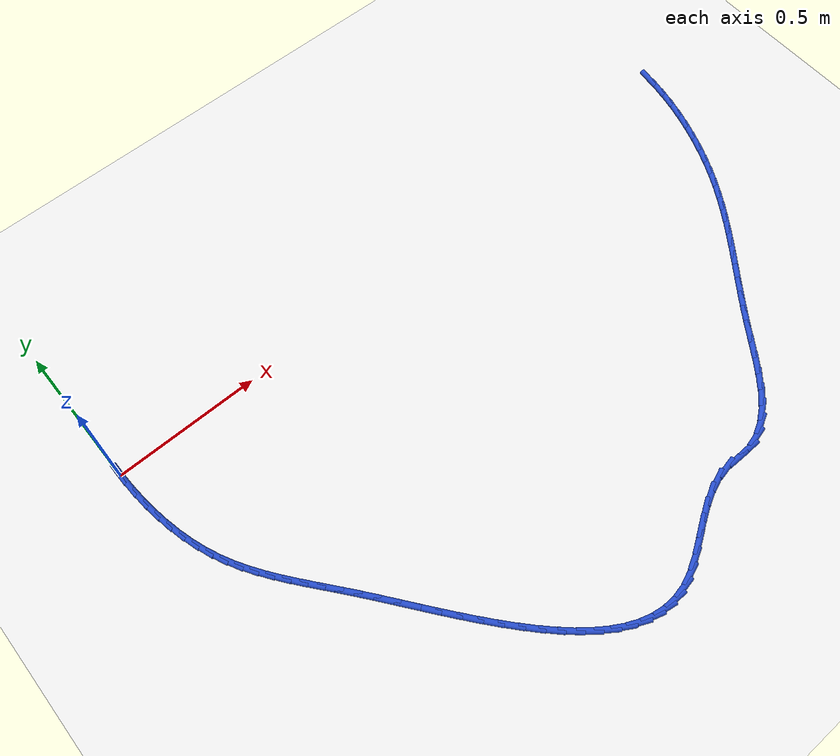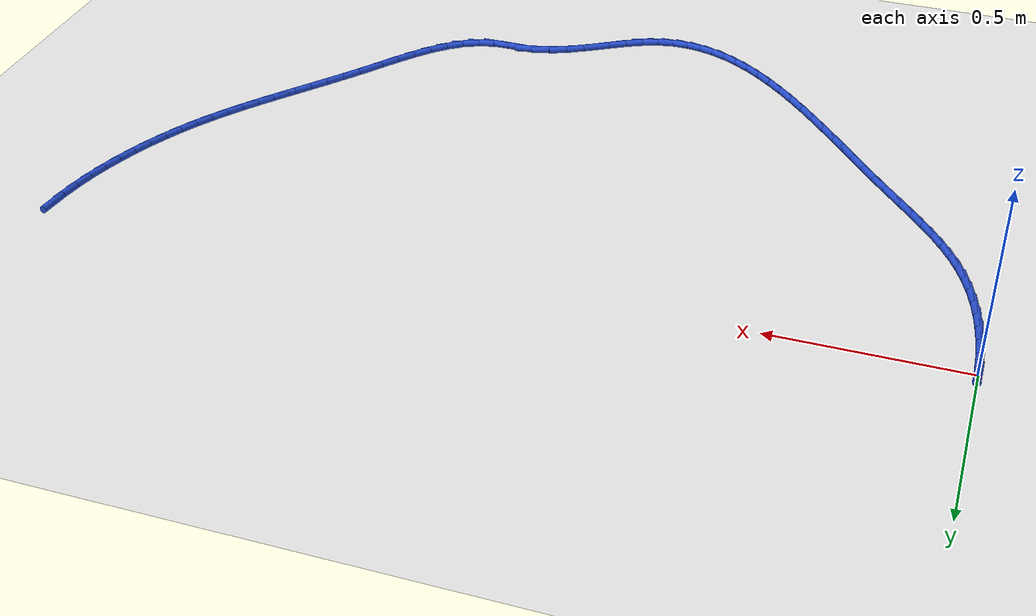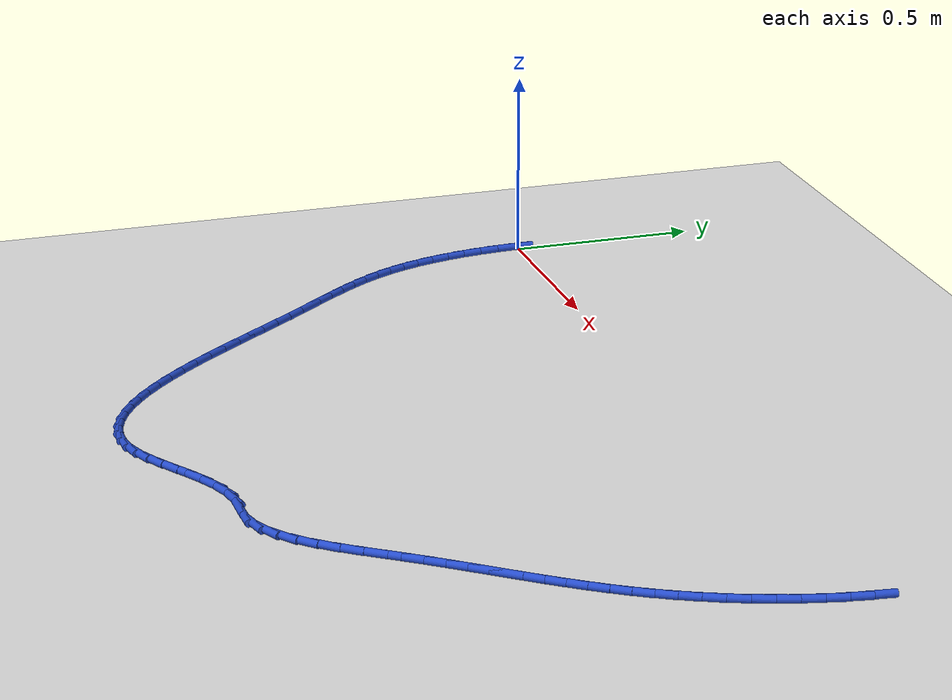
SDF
<sdf version="1.6">
 <world name="default">
  <model name="ground_plane">
   <static>1</static>
   <link name="link">
    <collision name="collision">
     <geometry><plane><normal>0 0 1</normal><size>100 100</size></plane></geometry>
     <surface><friction><ode><mu>100</mu><mu2>50</mu2></ode></friction></surface>
    </collision>
    <visual name="visual">
     <cast_shadows>0</cast_shadows>
     <geometry><plane><normal>0 0 1</normal><size>100 100</size></plane></geometry>
     <material>
      <script><uri>file://media/materials/scripts/gazebo.material</uri><name>Gazebo/WhiteGlow</name></script>
     </material>
    </visual>
   </link>
  </model>
  <model name="line">
   <link name="link_0">
    <pose>1.734723475976807e-18 4.163336342344337e-17 0.01 0 1.57 1.5695473844659875</pose>
    <collision name="collision">
     <geometry><cylinder><radius>0.01</radius><length>0.08</length></cylinder></geometry>
    </collision>
    <visual name="visual">
     <material>
      <script><name>Gazebo/Blue</name><uri>file://media/materials/scripts/gazebo.material</uri></script>
     </material>
     <geometry><cylinder><radius>0.01</radius><length>0.08</length></cylinder></geometry>
    </visual>
   </link>
   <link name="link_76">
    <pose>2.3649017792913236 0.04489803889261144 0.01 0 1.57 1.4408421237259572</pose>
    <collision name="collision">
     <geometry><cylinder><radius>0.01</radius><length>0.08</length></cylinder></geometry>
    </collision>
    <visual name="visual">
     <material>
      <script><name>Gazebo/Blue</name><uri>file://media/materials/scripts/gazebo.material</uri></script>
     </material>
     <geometry><cylinder><radius>0.01</radius><length>0.08</length></cylinder></geometry>
    </visual>
   </link>
   <link name="link_77">
    <pose>2.3579750446269636 -0.00810292153986026 0.01 0 1.57 1.3892770488132746</pose>
    <collision name="collision">
     <geometry><cylinder><radius>0.01</radius><length>0.08</length></cylinder></geometry>
    </collision>
    <visual name="visual">
     <material>
      <script><name>Gazebo/Blue</name><uri>file://media/materials/scripts/gazebo.material</uri></script>
     </material>
     <geometry><cylinder><radius>0.01</radius><length>0.08</length></cylinder></geometry>
    </visual>
   </link>
   <link name="link_78">
    <pose>2.3482644758122775 -0.06101014951831565 0.01 0 1.57 1.3408073047150721</pose>
    <collision name="collision">
     <geometry><cylinder><radius>0.01</radius><length>0.08</length></cylinder></geometry>
    </collision>
    <visual name="visual">
     <material>
      <script><name>Gazebo/Blue</name><uri>file://media/materials/scripts/gazebo.material</uri></script>
     </material>
     <geometry><cylinder><radius>0.01</radius><length>0.08</length></cylinder></geometry>
    </visual>
   </link>
   <link name="link_79">
    <pose>2.335953263272254 -0.11359255589817692 0.01 0 1.57 1.2949159385856528</pose>
    <collision name="collision">
     <geometry><cylinder><radius>0.01</radius><length>0.08</length></cylinder></geometry>
    </collision>
    <visual name="visual">
     <material>
      <script><name>Gazebo/Blue</name><uri>file://media/materials/scripts/gazebo.material</uri></script>
     </material>
     <geometry><cylinder><radius>0.01</radius><length>0.08</length></cylinder></geometry>
    </visual>
   </link>
   <link name="link_80">
    <pose>2.32122459743188 -0.16561905153486278 0.01 0 1.57 1.2511005310031922</pose>
    <collision name="collision">
     <geometry><cylinder><radius>0.01</radius><length>0.08</length></cylinder></geometry>
    </collision>
    <visual name="visual">
     <material>
      <script><name>Gazebo/Blue</name><uri>file://media/materials/scripts/gazebo.material</uri></script>
     </material>
     <geometry><cylinder><radius>0.01</radius><length>0.08</length></cylinder></geometry>
    </visual>
   </link>
   <link name="link_81">
    <pose>2.304261668716143 -0.21685854728379544 0.01 0 1.57 1.2088701583974053</pose>
    <collision name="collision">
     <geometry><cylinder><radius>0.01</radius><length>0.08</length></cylinder></geometry>
    </collision>
    <visual name="visual">
     <material>
      <script><name>Gazebo/Blue</name><uri>file://media/materials/scripts/gazebo.material</uri></script>
     </material>
     <geometry><cylinder><radius>0.01</radius><length>0.08</length></cylinder></geometry>
    </visual>
   </link>
   <link name="link_82">
    <pose>2.2852476675500313 -0.2670799540003944 0.01 0 1.57 1.1677383058425364</pose>
    <collision name="collision">
     <geometry><cylinder><radius>0.01</radius><length>0.08</length></cylinder></geometry>
    </collision>
    <visual name="visual">
     <material>
      <script><name>Gazebo/Blue</name><uri>file://media/materials/scripts/gazebo.material</uri></script>
     </material>
     <geometry><cylinder><radius>0.01</radius><length>0.08</length></cylinder></geometry>
    </visual>
   </link>
   <link name="link_83">
    <pose>2.2643657843585325 -0.3160521825400793 0.01 0 1.57 1.1272123939795518</pose>
    <collision name="collision">
     <geometry><cylinder><radius>0.01</radius><length>0.08</length></cylinder></geometry>
    </collision>
    <visual name="visual">
     <material>
      <script><name>Gazebo/Blue</name><uri>file://media/materials/scripts/gazebo.material</uri></script>
     </material>
     <geometry><cylinder><radius>0.01</radius><length>0.08</length></cylinder></geometry>
    </visual>
   </link>
   <link name="link_84">
    <pose>2.2417992095666346 -0.36354414375827226 0.01 0 1.57 1.0867799917671845</pose>
    <collision name="collision">
     <geometry><cylinder><radius>0.01</radius><length>0.08</length></cylinder></geometry>
    </collision>
    <visual name="visual">
     <material>
      <script><name>Gazebo/Blue</name><uri>file://media/materials/scripts/gazebo.material</uri></script>
     </material>
     <geometry><cylinder><radius>0.01</radius><length>0.08</length></cylinder></geometry>
    </visual>
   </link>
   <link name="link_85">
    <pose>2.217731133568367 -0.40932474873902086 0.01 0 1.57 1.0466288748015282</pose>
    <collision name="collision">
     <geometry><cylinder><radius>0.01</radius><length>0.08</length></cylinder></geometry>
    </collision>
    <visual name="visual">
     <material>
      <script><name>Gazebo/Blue</name><uri>file://media/materials/scripts/gazebo.material</uri></script>
     </material>
     <geometry><cylinder><radius>0.01</radius><length>0.08</length></cylinder></geometry>
    </visual>
   </link>
   <link name="link_86">
    <pose>2.1923315444752087 -0.45326040779905746 0.01 0 1.57 1.0095762652193239</pose>
    <collision name="collision">
     <geometry><cylinder><radius>0.01</radius><length>0.08</length></cylinder></geometry>
    </collision>
    <visual name="visual">
     <material>
      <script><name>Gazebo/Blue</name><uri>file://media/materials/scripts/gazebo.material</uri></script>
     </material>
     <geometry><cylinder><radius>0.01</radius><length>0.08</length></cylinder></geometry>
    </visual>
   </link>
   <link name="link_87">
    <pose>2.1657197114305498 -0.49559209227912004 0.01 0 1.57 0.9770061520092153</pose>
    <collision name="collision">
     <geometry><cylinder><radius>0.01</radius><length>0.08</length></cylinder></geometry>
    </collision>
    <visual name="visual">
     <material>
      <script><name>Gazebo/Blue</name><uri>file://media/materials/scripts/gazebo.material</uri></script>
     </material>
     <geometry><cylinder><radius>0.01</radius><length>0.08</length></cylinder></geometry>
    </visual>
   </link>
   <link name="link_88">
    <pose>2.138002725852883 -0.5366507063651704 0.01 0 1.57 0.9495499112246137</pose>
    <collision name="collision">
     <geometry><cylinder><radius>0.01</radius><length>0.08</length></cylinder></geometry>
    </collision>
    <visual name="visual">
     <material>
      <script><name>Gazebo/Blue</name><uri>file://media/materials/scripts/gazebo.material</uri></script>
     </material>
     <geometry><cylinder><radius>0.01</radius><length>0.08</length></cylinder></geometry>
    </visual>
   </link>
   <link name="link_89">
    <pose>2.109287679160701 -0.5767671542431724 0.01 0 1.57 0.9276658729128038</pose>
    <collision name="collision">
     <geometry><cylinder><radius>0.01</radius><length>0.08</length></cylinder></geometry>
    </collision>
    <visual name="visual">
     <material>
      <script><name>Gazebo/Blue</name><uri>file://media/materials/scripts/gazebo.material</uri></script>
     </material>
     <geometry><cylinder><radius>0.01</radius><length>0.08</length></cylinder></geometry>
    </visual>
   </link>
   <link name="link_90">
    <pose>2.0796816627724986 -0.6162723400990876 0.01 0 1.57 0.9116351513699099</pose>
    <collision name="collision">
     <geometry><cylinder><radius>0.01</radius><length>0.08</length></cylinder></geometry>
    </collision>
    <visual name="visual">
     <material>
      <script><name>Gazebo/Blue</name><uri>file://media/materials/scripts/gazebo.material</uri></script>
     </material>
     <geometry><cylinder><radius>0.01</radius><length>0.08</length></cylinder></geometry>
    </visual>
   </link>
   <link name="link_91">
    <pose>2.0492917681067695 -0.6554971681188778 0.01 0 1.57 0.9015695190994819</pose>
    <collision name="collision">
     <geometry><cylinder><radius>0.01</radius><length>0.08</length></cylinder></geometry>
    </collision>
    <visual name="visual">
     <material>
      <script><name>Gazebo/Blue</name><uri>file://media/materials/scripts/gazebo.material</uri></script>
     </material>
     <geometry><cylinder><radius>0.01</radius><length>0.08</length></cylinder></geometry>
    </visual>
   </link>
   <link name="link_92">
    <pose>2.0182250865820053 -0.6947725424885067 0.01 0 1.57 0.8974266095816686</pose>
    <collision name="collision">
     <geometry><cylinder><radius>0.01</radius><length>0.08</length></cylinder></geometry>
    </collision>
    <visual name="visual">
     <material>
      <script><name>Gazebo/Blue</name><uri>file://media/materials/scripts/gazebo.material</uri></script>
     </material>
     <geometry><cylinder><radius>0.01</radius><length>0.08</length></cylinder></geometry>
    </visual>
   </link>
   <link name="link_93">
    <pose>1.9865887096167005 -0.7344293673939353 0.01 0 1.57 0.8990283898471098</pose>
    <collision name="collision">
     <geometry><cylinder><radius>0.01</radius><length>0.08</length></cylinder></geometry>
    </collision>
    <visual name="visual">
     <material>
      <script><name>Gazebo/Blue</name><uri>file://media/materials/scripts/gazebo.material</uri></script>
     </material>
     <geometry><cylinder><radius>0.01</radius><length>0.08</length></cylinder></geometry>
    </visual>
   </link>
   <link name="link_94">
    <pose>1.954489728629349 -0.7747985470211276 0.01 0 1.57 0.9060802342906797</pose>
    <collision name="collision">
     <geometry><cylinder><radius>0.01</radius><length>0.08</length></cylinder></geometry>
    </collision>
    <visual name="visual">
     <material>
      <script><name>Gazebo/Blue</name><uri>file://media/materials/scripts/gazebo.material</uri></script>
     </material>
     <geometry><cylinder><radius>0.01</radius><length>0.08</length></cylinder></geometry>
    </visual>
   </link>
   <link name="link_95">
    <pose>1.922035235038443 -0.8162109855560449 0.01 0 1.57 0.9181894072336634</pose>
    <collision name="collision">
     <geometry><cylinder><radius>0.01</radius><length>0.08</length></cylinder></geometry>
    </collision>
    <visual name="visual">
     <material>
      <script><name>Gazebo/Blue</name><uri>file://media/materials/scripts/gazebo.material</uri></script>
     </material>
     <geometry><cylinder><radius>0.01</radius><length>0.08</length></cylinder></geometry>
    </visual>
   </link>
   <link name="link_96">
    <pose>1.8893323202624774 -0.8589975871846491 0.01 0 1.57 0.9347436394525728</pose>
    <collision name="collision">
     <geometry><cylinder><radius>0.01</radius><length>0.08</length></cylinder></geometry>
    </collision>
    <visual name="visual">
     <material>
      <script><name>Gazebo/Blue</name><uri>file://media/materials/scripts/gazebo.material</uri></script>
     </material>
     <geometry><cylinder><radius>0.01</radius><length>0.08</length></cylinder></geometry>
    </visual>
   </link>
   <link name="link_97">
    <pose>1.8564854625218865 -0.9034798307692181 0.01 0 1.57 0.9454439014108309</pose>
    <collision name="collision">
     <geometry><cylinder><radius>0.01</radius><length>0.08</length></cylinder></geometry>
    </collision>
    <visual name="visual">
     <material>
      <script><name>Gazebo/Blue</name><uri>file://media/materials/scripts/gazebo.material</uri></script>
     </material>
     <geometry><cylinder><radius>0.01</radius><length>0.08</length></cylinder></geometry>
    </visual>
   </link>
   <link name="link_98">
    <pose>1.8234084817130296 -0.949291525742367 0.01 0 1.57 0.9345434135452154</pose>
    <collision name="collision">
     <geometry><cylinder><radius>0.01</radius><length>0.08</length></cylinder></geometry>
    </collision>
    <visual name="visual">
     <material>
      <script><name>Gazebo/Blue</name><uri>file://media/materials/scripts/gazebo.material</uri></script>
     </material>
     <geometry><cylinder><radius>0.01</radius><length>0.08</length></cylinder></geometry>
    </visual>
   </link>
   <link name="link_99">
    <pose>1.7896983598570202 -0.9949237057255055 0.01 0 1.57 0.9001369142952705</pose>
    <collision name="collision">
     <geometry><cylinder><radius>0.01</radius><length>0.08</length></cylinder></geometry>
    </collision>
    <visual name="visual">
     <material>
      <script><name>Gazebo/Blue</name><uri>file://media/materials/scripts/gazebo.material</uri></script>
     </material>
     <geometry><cylinder><radius>0.01</radius><length>0.08</length></cylinder></geometry>
    </visual>
   </link>
   <link name="link_100">
    <pose>1.754922170715385 -1.0387595307608861 0.01 0 1.57 0.8394207207594148</pose>
    <collision name="collision">
     <geometry><cylinder><radius>0.01</radius><length>0.08</length></cylinder></geometry>
    </collision>
    <visual name="visual">
     <material>
      <script><name>Gazebo/Blue</name><uri>file://media/materials/scripts/gazebo.material</uri></script>
     </material>
     <geometry><cylinder><radius>0.01</radius><length>0.08</length></cylinder></geometry>
    </visual>
   </link>
   <link name="link_101">
    <pose>1.7186469880496509 -1.079182160890761 0.01 0 1.57 0.7471760440602291</pose>
    <collision name="collision">
     <geometry><cylinder><radius>0.01</radius><length>0.08</length></cylinder></geometry>
    </collision>
    <visual name="visual">
     <material>
      <script><name>Gazebo/Blue</name><uri>file://media/materials/scripts/gazebo.material</uri></script>
     </material>
     <geometry><cylinder><radius>0.01</radius><length>0.08</length></cylinder></geometry>
    </visual>
   </link>
   <link name="link_102">
    <pose>1.6804398856213425 -1.1145747561573844 0.01 0 1.57 0.6164160340300721</pose>
    <collision name="collision">
     <geometry><cylinder><radius>0.01</radius><length>0.08</length></cylinder></geometry>
    </collision>
    <visual name="visual">
     <material>
      <script><name>Gazebo/Blue</name><uri>file://media/materials/scripts/gazebo.material</uri></script>
     </material>
     <geometry><cylinder><radius>0.01</radius><length>0.08</length></cylinder></geometry>
    </visual>
   </link>
   <link name="link_103">
    <pose>1.6398679371919866 -1.1433204766030094 0.01 0 1.57 0.4412145432560478</pose>
    <collision name="collision">
     <geometry><cylinder><radius>0.01</radius><length>0.08</length></cylinder></geometry>
    </collision>
    <visual name="visual">
     <material>
      <script><name>Gazebo/Blue</name><uri>file://media/materials/scripts/gazebo.material</uri></script>
     </material>
     <geometry><cylinder><radius>0.01</radius><length>0.08</length></cylinder></geometry>
    </visual>
   </link>
   <link name="link_104">
    <pose>1.5964982165231096 -1.1638024822698878 0.01 0 1.57 0.223689753819876</pose>
    <collision name="collision">
     <geometry><cylinder><radius>0.01</radius><length>0.08</length></cylinder></geometry>
    </collision>
    <visual name="visual">
     <material>
      <script><name>Gazebo/Blue</name><uri>file://media/materials/scripts/gazebo.material</uri></script>
     </material>
     <geometry><cylinder><radius>0.01</radius><length>0.08</length></cylinder></geometry>
    </visual>
   </link>
   <link name="link_105">
    <pose>1.549897797376236 -1.1744039332002736 0.01 0 1.57 0.004072688614267255</pose>
    <collision name="collision">
     <geometry><cylinder><radius>0.01</radius><length>0.08</length></cylinder></geometry>
    </collision>
    <visual name="visual">
     <material>
      <script><name>Gazebo/Blue</name><uri>file://media/materials/scripts/gazebo.material</uri></script>
     </material>
     <geometry><cylinder><radius>0.01</radius><length>0.08</length></cylinder></geometry>
    </visual>
   </link>
   <link name="link_106">
    <pose>1.4998926563912276 -1.174607589694622 0.01 0 1.57 -0.009997981243390384</pose>
    <collision name="collision">
     <geometry><cylinder><radius>0.01</radius><length>0.08</length></cylinder></geometry>
    </collision>
    <visual name="visual">
     <material>
      <script><name>Gazebo/Blue</name><uri>file://media/materials/scripts/gazebo.material</uri></script>
     </material>
     <geometry><cylinder><radius>0.01</radius><length>0.08</length></cylinder></geometry>
    </visual>
   </link>
   <link name="link_107">
    <pose>1.4487108863418365 -1.1740958582667231 0.01 0 1.57 0.17848686323441992</pose>
    <collision name="collision">
     <geometry><cylinder><radius>0.01</radius><length>0.08</length></cylinder></geometry>
    </collision>
    <visual name="visual">
     <material>
      <script><name>Gazebo/Blue</name><uri>file://media/materials/scripts/gazebo.material</uri></script>
     </material>
     <geometry><cylinder><radius>0.01</radius><length>0.08</length></cylinder></geometry>
    </visual>
   </link>
   <link name="link_108">
    <pose>1.3988385212987402 -1.1830931679148318 0.01 0 1.57 0.3469346015298998</pose>
    <collision name="collision">
     <geometry><cylinder><radius>0.01</radius><length>0.08</length></cylinder></geometry>
    </collision>
    <visual name="visual">
     <material>
      <script><name>Gazebo/Blue</name><uri>file://media/materials/scripts/gazebo.material</uri></script>
     </material>
     <geometry><cylinder><radius>0.01</radius><length>0.08</length></cylinder></geometry>
    </visual>
   </link>
   <link name="link_109">
    <pose>1.3504126407192214 -1.200601957470581 0.01 0 1.57 0.4619355954478422</pose>
    <collision name="collision">
     <geometry><cylinder><radius>0.01</radius><length>0.08</length></cylinder></geometry>
    </collision>
    <visual name="visual">
     <material>
      <script><name>Gazebo/Blue</name><uri>file://media/materials/scripts/gazebo.material</uri></script>
     </material>
     <geometry><cylinder><radius>0.01</radius><length>0.08</length></cylinder></geometry>
    </visual>
   </link>
   <link name="link_110">
    <pose>1.3032475651272217 -1.2240836474336811 0.01 0 1.57 0.5285633007739913</pose>
    <collision name="collision">
     <geometry><cylinder><radius>0.01</radius><length>0.08</length></cylinder></geometry>
    </collision>
    <visual name="visual">
     <material>
      <script><name>Gazebo/Blue</name><uri>file://media/materials/scripts/gazebo.material</uri></script>
     </material>
     <geometry><cylinder><radius>0.01</radius><length>0.08</length></cylinder></geometry>
    </visual>
   </link>
   <link name="link_111">
    <pose>1.2571576150466848 -1.250999658303843 0.01 0 1.57 0.5515917153704886</pose>
    <collision name="collision">
     <geometry><cylinder><radius>0.01</radius><length>0.08</length></cylinder></geometry>
    </collision>
    <visual name="visual">
     <material>
      <script><name>Gazebo/Blue</name><uri>file://media/materials/scripts/gazebo.material</uri></script>
     </material>
     <geometry><cylinder><radius>0.01</radius><length>0.08</length></cylinder></geometry>
    </visual>
   </link>
   <link name="link_112">
    <pose>1.2119571110015535 -1.2788114105807757 0.01 0 1.57 0.5316299403858084</pose>
    <collision name="collision">
     <geometry><cylinder><radius>0.01</radius><length>0.08</length></cylinder></geometry>
    </collision>
    <visual name="visual">
     <material>
      <script><name>Gazebo/Blue</name><uri>file://media/materials/scripts/gazebo.material</uri></script>
     </material>
     <geometry><cylinder><radius>0.01</radius><length>0.08</length></cylinder></geometry>
    </visual>
   </link>
   <link name="link_113">
    <pose>1.1674603735157691 -1.3049803247641907 0.01 0 1.57 0.46361434482308966</pose>
    <collision name="collision">
     <geometry><cylinder><radius>0.01</radius><length>0.08</length></cylinder></geometry>
    </collision>
    <visual name="visual">
     <material>
      <script><name>Gazebo/Blue</name><uri>file://media/materials/scripts/gazebo.material</uri></script>
     </material>
     <geometry><cylinder><radius>0.01</radius><length>0.08</length></cylinder></geometry>
    </visual>
   </link>
   <link name="link_114">
    <pose>1.123481723113276 -1.3269678213537968 0.01 0 1.57 0.3371829681595781</pose>
    <collision name="collision">
     <geometry><cylinder><radius>0.01</radius><length>0.08</length></cylinder></geometry>
    </collision>
    <visual name="visual">
     <material>
      <script><name>Gazebo/Blue</name><uri>file://media/materials/scripts/gazebo.material</uri></script>
     </material>
     <geometry><cylinder><radius>0.01</radius><length>0.08</length></cylinder></geometry>
    </visual>
   </link>
   <link name="link_115">
    <pose>1.0798376852303466 -1.342268133471447 0.01 0 1.57 0.16850773849767295</pose>
    <collision name="collision">
     <geometry><cylinder><radius>0.01</radius><length>0.08</length></cylinder></geometry>
    </collision>
    <visual name="visual">
     <material>
      <script><name>Gazebo/Blue</name><uri>file://media/materials/scripts/gazebo.material</uri></script>
     </material>
     <geometry><cylinder><radius>0.01</radius><length>0.08</length></cylinder></geometry>
    </visual>
   </link>
   <link name="link_116">
    <pose>1.0364306023417846 -1.349652589032562 0.01 0 1.57 -0.0023220489131690596</pose>
    <collision name="collision">
     <geometry><cylinder><radius>0.01</radius><length>0.08</length></cylinder></geometry>
    </collision>
    <visual name="visual">
     <material>
      <script><name>Gazebo/Blue</name><uri>file://media/materials/scripts/gazebo.material</uri></script>
     </material>
     <geometry><cylinder><radius>0.01</radius><length>0.08</length></cylinder></geometry>
    </visual>
   </link>
   <link name="link_117">
    <pose>0.9932743547975763 -1.3495523779347456 0.01 0 1.57 -0.16277279609281153</pose>
    <collision name="collision">
     <geometry><cylinder><radius>0.01</radius><length>0.08</length></cylinder></geometry>
    </collision>
    <visual name="visual">
     <material>
      <script><name>Gazebo/Blue</name><uri>file://media/materials/scripts/gazebo.material</uri></script>
     </material>
     <geometry><cylinder><radius>0.01</radius><length>0.08</length></cylinder></geometry>
    </visual>
   </link>
   <link name="link_118">
    <pose>0.9503902830998205 -1.342509709071264 0.01 0 1.57 -0.30573514933930124</pose>
    <collision name="collision">
     <geometry><cylinder><radius>0.01</radius><length>0.08</length></cylinder></geometry>
    </collision>
    <visual name="visual">
     <material>
      <script><name>Gazebo/Blue</name><uri>file://media/materials/scripts/gazebo.material</uri></script>
     </material>
     <geometry><cylinder><radius>0.01</radius><length>0.08</length></cylinder></geometry>
    </visual>
   </link>
   <link name="link_119">
    <pose>0.9077997277506215 -1.329066791335384 0.01 0 1.57 -0.42828729601250937</pose>
    <collision name="collision">
     <geometry><cylinder><radius>0.01</radius><length>0.08</length></cylinder></geometry>
    </collision>
    <visual name="visual">
     <material>
      <script><name>Gazebo/Blue</name><uri>file://media/materials/scripts/gazebo.material</uri></script>
     </material>
     <geometry><cylinder><radius>0.01</radius><length>0.08</length></cylinder></geometry>
    </visual>
   </link>
   <link name="link_120">
    <pose>0.8655240292520792 -1.3097658336203717 0.01 0 1.57 -0.5307757154727222</pose>
    <collision name="collision">
     <geometry><cylinder><radius>0.01</radius><length>0.08</length></cylinder></geometry>
    </collision>
    <visual name="visual">
     <material>
      <script><name>Gazebo/Blue</name><uri>file://media/materials/scripts/gazebo.material</uri></script>
     </material>
     <geometry><cylinder><radius>0.01</radius><length>0.08</length></cylinder></geometry>
    </visual>
   </link>
   <link name="link_121">
    <pose>0.8235845281062953 -1.285149044819492 0.01 0 1.57 -0.6152796381174105</pose>
    <collision name="collision">
     <geometry><cylinder><radius>0.01</radius><length>0.08</length></cylinder></geometry>
    </collision>
    <visual name="visual">
     <material>
      <script><name>Gazebo/Blue</name><uri>file://media/materials/scripts/gazebo.material</uri></script>
     </material>
     <geometry><cylinder><radius>0.01</radius><length>0.08</length></cylinder></geometry>
    </visual>
   </link>
   <link name="link_122">
    <pose>0.7820025648153733 -1.2557586338260132 0.01 0 1.57 -0.6844227406519785</pose>
    <collision name="collision">
     <geometry><cylinder><radius>0.01</radius><length>0.08</length></cylinder></geometry>
    </collision>
    <visual name="visual">
     <material>
      <script><name>Gazebo/Blue</name><uri>file://media/materials/scripts/gazebo.material</uri></script>
     </material>
     <geometry><cylinder><radius>0.01</radius><length>0.08</length></cylinder></geometry>
    </visual>
   </link>
   <link name="link_123">
    <pose>0.7407994798814127 -1.2221368095331997 0.01 0 1.57 -0.7407260303865691</pose>
    <collision name="collision">
     <geometry><cylinder><radius>0.01</radius><length>0.08</length></cylinder></geometry>
    </collision>
    <visual name="visual">
     <material>
      <script><name>Gazebo/Blue</name><uri>file://media/materials/scripts/gazebo.material</uri></script>
     </material>
     <geometry><cylinder><radius>0.01</radius><length>0.08</length></cylinder></geometry>
    </visual>
   </link>
   <link name="link_124">
    <pose>0.6999966138065159 -1.1848257808343179 0.01 0 1.57 -0.7863471751475765</pose>
    <collision name="collision">
     <geometry><cylinder><radius>0.01</radius><length>0.08</length></cylinder></geometry>
    </collision>
    <visual name="visual">
     <material>
      <script><name>Gazebo/Blue</name><uri>file://media/materials/scripts/gazebo.material</uri></script>
     </material>
     <geometry><cylinder><radius>0.01</radius><length>0.08</length></cylinder></geometry>
    </visual>
   </link>
   <link name="link_125">
    <pose>0.6596153070927857 -1.1443677566226358 0.01 0 1.57 -0.8230232678986537</pose>
    <collision name="collision">
     <geometry><cylinder><radius>0.01</radius><length>0.08</length></cylinder></geometry>
    </collision>
    <visual name="visual">
     <material>
      <script><name>Gazebo/Blue</name><uri>file://media/materials/scripts/gazebo.material</uri></script>
     </material>
     <geometry><cylinder><radius>0.01</radius><length>0.08</length></cylinder></geometry>
    </visual>
   </link>
   <link name="link_126">
    <pose>0.619676900242322 -1.1013049457914172 0.01 0 1.57 -0.8520987374539492</pose>
    <collision name="collision">
     <geometry><cylinder><radius>0.01</radius><length>0.08</length></cylinder></geometry>
    </collision>
    <visual name="visual">
     <material>
      <script><name>Gazebo/Blue</name><uri>file://media/materials/scripts/gazebo.material</uri></script>
     </material>
     <geometry><cylinder><radius>0.01</radius><length>0.08</length></cylinder></geometry>
    </visual>
   </link>
   <link name="link_127">
    <pose>0.580202733757228 -1.0561795572339303 0.01 0 1.57 -0.8745780582200409</pose>
    <collision name="collision">
     <geometry><cylinder><radius>0.01</radius><length>0.08</length></cylinder></geometry>
    </collision>
    <visual name="visual">
     <material>
      <script><name>Gazebo/Blue</name><uri>file://media/materials/scripts/gazebo.material</uri></script>
     </material>
     <geometry><cylinder><radius>0.01</radius><length>0.08</length></cylinder></geometry>
    </visual>
   </link>
   <link name="link_128">
    <pose>0.5412141481396037 -1.0095337998434393 0.01 0 1.57 -0.8911767847220619</pose>
    <collision name="collision">
     <geometry><cylinder><radius>0.01</radius><length>0.08</length></cylinder></geometry>
    </collision>
    <visual name="visual">
     <material>
      <script><name>Gazebo/Blue</name><uri>file://media/materials/scripts/gazebo.material</uri></script>
     </material>
     <geometry><cylinder><radius>0.01</radius><length>0.08</length></cylinder></geometry>
    </visual>
   </link>
   <link name="link_129">
    <pose>0.5027324838915518 -0.9619098825132116 0.01 0 1.57 -0.9023607841999367</pose>
    <collision name="collision">
     <geometry><cylinder><radius>0.01</radius><length>0.08</length></cylinder></geometry>
    </collision>
    <visual name="visual">
     <material>
      <script><name>Gazebo/Blue</name><uri>file://media/materials/scripts/gazebo.material</uri></script>
     </material>
     <geometry><cylinder><radius>0.01</radius><length>0.08</length></cylinder></geometry>
    </visual>
   </link>
   <link name="link_130">
    <pose>0.46477908151517455 -0.913850014136514 0.01 0 1.57 -0.9083702431396463</pose>
    <collision name="collision">
     <geometry><cylinder><radius>0.01</radius><length>0.08</length></cylinder></geometry>
    </collision>
    <visual name="visual">
     <material>
      <script><name>Gazebo/Blue</name><uri>file://media/materials/scripts/gazebo.material</uri></script>
     </material>
     <geometry><cylinder><radius>0.01</radius><length>0.08</length></cylinder></geometry>
    </visual>
   </link>
   <link name="link_131">
    <pose>0.42737528151257237 -0.8658964036066114 0.01 0 1.57 -0.9092269437065361</pose>
    <collision name="collision">
     <geometry><cylinder><radius>0.01</radius><length>0.08</length></cylinder></geometry>
    </collision>
    <visual name="visual">
     <material>
      <script><name>Gazebo/Blue</name><uri>file://media/materials/scripts/gazebo.material</uri></script>
     </material>
     <geometry><cylinder><radius>0.01</radius><length>0.08</length></cylinder></geometry>
    </visual>
   </link>
   <link name="link_132">
    <pose>0.390542424385848 -0.8185912598167712 0.01 0 1.57 -0.9047228204392909</pose>
    <collision name="collision">
     <geometry><cylinder><radius>0.01</radius><length>0.08</length></cylinder></geometry>
    </collision>
    <visual name="visual">
     <material>
      <script><name>Gazebo/Blue</name><uri>file://media/materials/scripts/gazebo.material</uri></script>
     </material>
     <geometry><cylinder><radius>0.01</radius><length>0.08</length></cylinder></geometry>
    </visual>
   </link>
   <link name="link_133">
    <pose>0.3543018506371021 -0.7724767916602582 0.01 0 1.57 -0.8944877003846682</pose>
    <collision name="collision">
     <geometry><cylinder><radius>0.01</radius><length>0.08</length></cylinder></geometry>
    </collision>
    <visual name="visual">
     <material>
      <script><name>Gazebo/Blue</name><uri>file://media/materials/scripts/gazebo.material</uri></script>
     </material>
     <geometry><cylinder><radius>0.01</radius><length>0.08</length></cylinder></geometry>
    </visual>
   </link>
   <link name="link_134">
    <pose>0.31867662364549587 -0.7280880914719531 0.01 0 1.57 -0.8836662624546117</pose>
    <collision name="collision">
     <geometry><cylinder><radius>0.01</radius><length>0.08</length></cylinder></geometry>
    </collision>
    <visual name="visual">
     <material>
      <script><name>Gazebo/Blue</name><uri>file://media/materials/scripts/gazebo.material</uri></script>
     </material>
     <geometry><cylinder><radius>0.01</radius><length>0.08</length></cylinder></geometry>
    </visual>
   </link>
   <link name="link_135">
    <pose>0.2837854881624539 -0.6855650277554017 0.01 0 1.57 -0.8813379860865725</pose>
    <collision name="collision">
     <geometry><cylinder><radius>0.01</radius><length>0.08</length></cylinder></geometry>
    </collision>
    <visual name="visual">
     <material>
      <script><name>Gazebo/Blue</name><uri>file://media/materials/scripts/gazebo.material</uri></script>
     </material>
     <geometry><cylinder><radius>0.01</radius><length>0.08</length></cylinder></geometry>
    </visual>
   </link>
   <link name="link_136">
    <pose>0.2498912339443576 -0.6444524731712031 0.01 0 1.57 -0.8891540665827079</pose>
    <collision name="collision">
     <geometry><cylinder><radius>0.01</radius><length>0.08</length></cylinder></geometry>
    </collision>
    <visual name="visual">
     <material>
      <script><name>Gazebo/Blue</name><uri>file://media/materials/scripts/gazebo.material</uri></script>
     </material>
     <geometry><cylinder><radius>0.01</radius><length>0.08</length></cylinder></geometry>
    </visual>
   </link>
   <link name="link_137">
    <pose>0.21726855673142803 -0.6042461212300652 0.01 0 1.57 -0.9079183290040524</pose>
    <collision name="collision">
     <geometry><cylinder><radius>0.01</radius><length>0.08</length></cylinder></geometry>
    </collision>
    <visual name="visual">
     <material>
      <script><name>Gazebo/Blue</name><uri>file://media/materials/scripts/gazebo.material</uri></script>
     </material>
     <geometry><cylinder><radius>0.01</radius><length>0.08</length></cylinder></geometry>
    </visual>
   </link>
   <link name="link_138">
    <pose>0.18619215226388622 -0.5644416654426959 0.01 0 1.57 -0.938203929886118</pose>
    <collision name="collision">
     <geometry><cylinder><radius>0.01</radius><length>0.08</length></cylinder></geometry>
    </collision>
    <visual name="visual">
     <material>
      <script><name>Gazebo/Blue</name><uri>file://media/materials/scripts/gazebo.material</uri></script>
     </material>
     <geometry><cylinder><radius>0.01</radius><length>0.08</length></cylinder></geometry>
    </visual>
   </link>
   <link name="link_139">
    <pose>0.156936716281952 -0.5245347993198021 0.01 0 1.57 -0.9802226574851481</pose>
    <collision name="collision">
     <geometry><cylinder><radius>0.01</radius><length>0.08</length></cylinder></geometry>
    </collision>
    <visual name="visual">
     <material>
      <script><name>Gazebo/Blue</name><uri>file://media/materials/scripts/gazebo.material</uri></script>
     </material>
     <geometry><cylinder><radius>0.01</radius><length>0.08</length></cylinder></geometry>
    </visual>
   </link>
   <link name="link_140">
    <pose>0.12977694452584684 -0.484021216372092 0.01 0 1.57 -1.033657481962821</pose>
    <collision name="collision">
     <geometry><cylinder><radius>0.01</radius><length>0.08</length></cylinder></geometry>
    </collision>
    <visual name="visual">
     <material>
      <script><name>Gazebo/Blue</name><uri>file://media/materials/scripts/gazebo.material</uri></script>
     </material>
     <geometry><cylinder><radius>0.01</radius><length>0.08</length></cylinder></geometry>
    </visual>
   </link>
   <link name="link_141">
    <pose>0.10498753273579052 -0.44239661011027226 0.01 0 1.57 -1.0974823962360618</pose>
    <collision name="collision">
     <geometry><cylinder><radius>0.01</radius><length>0.08</length></cylinder></geometry>
    </collision>
    <visual name="visual">
     <material>
      <script><name>Gazebo/Blue</name><uri>file://media/materials/scripts/gazebo.material</uri></script>
     </material>
     <geometry><cylinder><radius>0.01</radius><length>0.08</length></cylinder></geometry>
    </visual>
   </link>
   <link name="link_142">
    <pose>0.08284286010097361 -0.3991572855024145 0.01 0 1.57 -1.1665237509253814</pose>
    <collision name="collision">
     <geometry><cylinder><radius>0.01</radius><length>0.08</length></cylinder></geometry>
    </collision>
    <visual name="visual">
     <material>
      <script><name>Gazebo/Blue</name><uri>file://media/materials/scripts/gazebo.material</uri></script>
     </material>
     <geometry><cylinder><radius>0.01</radius><length>0.08</length></cylinder></geometry>
    </visual>
   </link>
   <link name="link_143">
    <pose>0.06351862087370264 -0.35399016964535696 0.01 0 1.57 -1.231571030268411</pose>
    <collision name="collision">
     <geometry><cylinder><radius>0.01</radius><length>0.08</length></cylinder></geometry>
    </collision>
    <visual name="visual">
     <material>
      <script><name>Gazebo/Blue</name><uri>file://media/materials/scripts/gazebo.material</uri></script>
     </material>
     <geometry><cylinder><radius>0.01</radius><length>0.08</length></cylinder></geometry>
    </visual>
   </link>
   <link name="link_144">
    <pose>0.046952327191764974 -0.30704226777083093 0.01 0 1.57 -1.2916391797711781</pose>
    <collision name="collision">
     <geometry><cylinder><radius>0.01</radius><length>0.08</length></cylinder></geometry>
    </collision>
    <visual name="visual">
     <material>
      <script><name>Gazebo/Blue</name><uri>file://media/materials/scripts/gazebo.material</uri></script>
     </material>
     <geometry><cylinder><radius>0.01</radius><length>0.08</length></cylinder></geometry>
    </visual>
   </link>
   <link name="link_145">
    <pose>0.03304627509887282 -0.2585286093403229 0.01 0 1.57 -1.3471157007371772</pose>
    <collision name="collision">
     <geometry><cylinder><radius>0.01</radius><length>0.08</length></cylinder></geometry>
    </collision>
    <visual name="visual">
     <material>
      <script><name>Gazebo/Blue</name><uri>file://media/materials/scripts/gazebo.material</uri></script>
     </material>
     <geometry><cylinder><radius>0.01</radius><length>0.08</length></cylinder></geometry>
    </visual>
   </link>
   <link name="link_146">
    <pose>0.021702760638737405 -0.2086642238153156 0.01 0 1.57 -1.398432303741796</pose>
    <collision name="collision">
     <geometry><cylinder><radius>0.01</radius><length>0.08</length></cylinder></geometry>
    </collision>
    <visual name="visual">
     <material>
      <script><name>Gazebo/Blue</name><uri>file://media/materials/scripts/gazebo.material</uri></script>
     </material>
     <geometry><cylinder><radius>0.01</radius><length>0.08</length></cylinder></geometry>
    </visual>
   </link>
   <link name="link_147">
    <pose>0.012824079855070706 -0.15766414065729475 0.01 0 1.57 -1.4460344436518895</pose>
    <collision name="collision">
     <geometry><cylinder><radius>0.01</radius><length>0.08</length></cylinder></geometry>
    </collision>
    <visual name="visual">
     <material>
      <script><name>Gazebo/Blue</name><uri>file://media/materials/scripts/gazebo.material</uri></script>
     </material>
     <geometry><cylinder><radius>0.01</radius><length>0.08</length></cylinder></geometry>
    </visual>
   </link>
   <link name="link_148">
    <pose>0.00631252879158452 -0.10574338932774596 0.01 0 1.57 -1.4903619111171564</pose>
    <collision name="collision">
     <geometry><cylinder><radius>0.01</radius><length>0.08</length></cylinder></geometry>
    </collision>
    <visual name="visual">
     <material>
      <script><name>Gazebo/Blue</name><uri>file://media/materials/scripts/gazebo.material</uri></script>
     </material>
     <geometry><cylinder><radius>0.01</radius><length>0.08</length></cylinder></geometry>
    </visual>
   </link>
   <link name="link_149">
    <pose>0.00207040349199034 -0.05311699928815222 0.01 0 1.57 -1.5318378774349786</pose>
    <collision name="collision">
     <geometry><cylinder><radius>0.01</radius><length>0.08</length></cylinder></geometry>
    </collision>
    <visual name="visual">
     <material>
      <script><name>Gazebo/Blue</name><uri>file://media/materials/scripts/gazebo.material</uri></script>
     </material>
     <geometry><cylinder><radius>0.01</radius><length>0.08</length></cylinder></geometry>
    </visual>
   </link>
   <link name="link_150">
    <pose>1.0408340855860843e-17 0.0 0.01 0 1.57 1.5707286327560945</pose>
    <collision name="collision">
     <geometry><cylinder><radius>0.01</radius><length>0.08</length></cylinder></geometry>
    </collision>
    <visual name="visual">
     <material>
      <script><name>Gazebo/Blue</name><uri>file://media/materials/scripts/gazebo.material</uri></script>
     </material>
     <geometry><cylinder><radius>0.01</radius><length>0.08</length></cylinder></geometry>
    </visual>
   </link>
  </model>
 </world>
</sdf>
